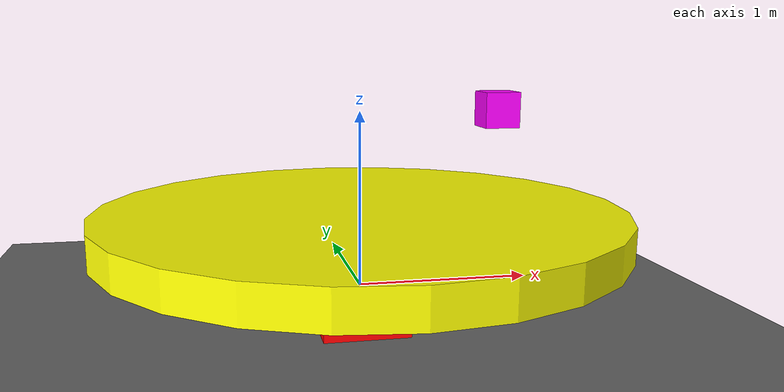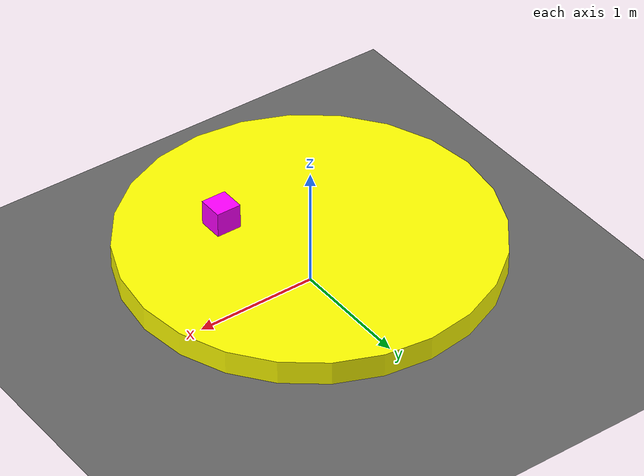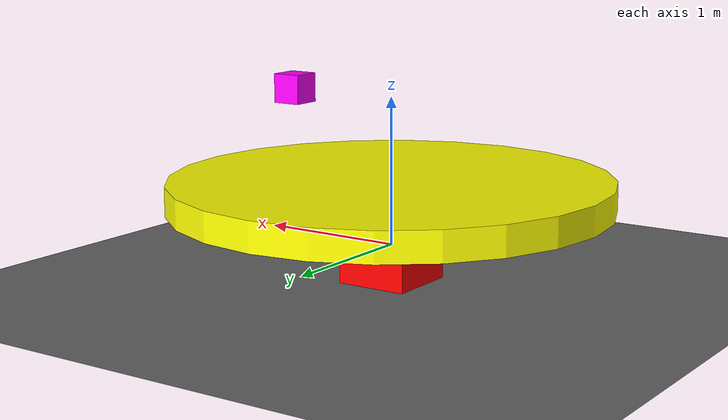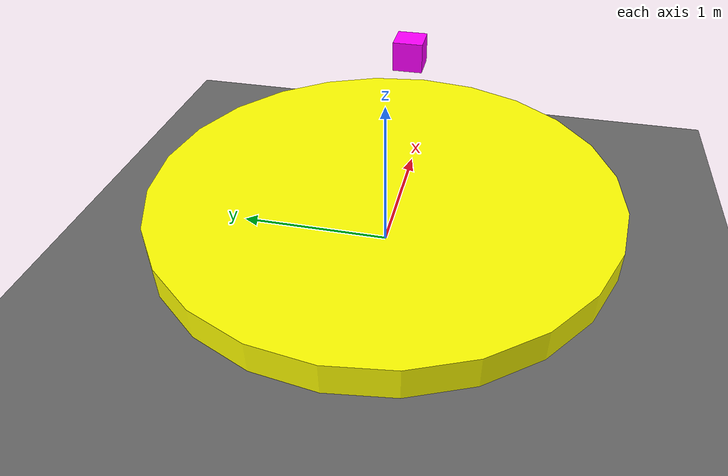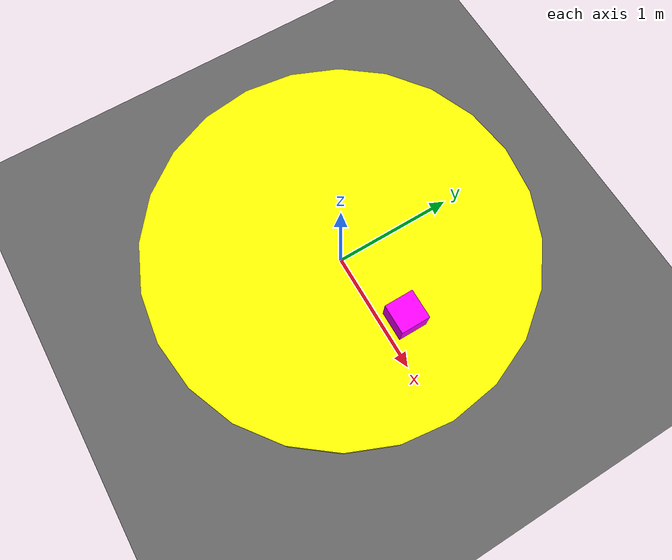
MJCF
<mujoco>
  <include file="./common/materials.xml"/>
  <option timestep="0.01"/>
  <statistic center="0 0 0" extent="1.5"/>

  <worldbody>
    <light name="light" pos="0 0 3" directional = "true"/>
    <camera name="fixed" pos="0 -3 3" xyaxes="1 0 0 0 1 1"/>
    <geom name="floor" type="plane" size="5 5 0.1" pos="0 0 -0.245" rgba="0.4 0.4 0.4 1" material="motphys-ground"/>

    <body>
      <freejoint/>
      <geom name="freebox" type="box" size="0.1 0.1 0.1" pos="0.8 0 1" rgba="1 0 1 1"/>
    </body>

    <body name="car" pos = "0 0 0">
      <joint name="slider" type="slide" axis="1 0 0" limited="true" range = "-2 2"/>
      <geom name = "box" type="box" size="0.25 0.25 0.25" pos = "0 0 0 " rgba="1 0 0 1"/>
      <site name="car_imu" type="sphere" size="0.03" rgba="0 1 0 1" pos="0 0 0"/>

      <body name="bar" pos = "0 0 0.35">
          <joint name="hinge" type="hinge" limited="false" axis = "0 0 1"/>
          <geom name="bar" type="cylinder" size="1.5 0.1" pos = "0 0 0 " rgba="1 1 0 1"/>
          <site name="imu_0" type="sphere" size="0.03" rgba="0 1 0 1" pos="0 0 0"/>
          <site name="imu_1" type="sphere" size="0.03" rgba="0 1 0 1" pos="0 0.5 0"/>
          <site name="imu_2" type="sphere" size="0.03" rgba="0 1 0 1" pos="0 1.0 0"/>
      </body>
    </body>
  </worldbody>

  <actuator>
    <motor name="actuator_slider" joint="slider" gear="500"/>
    <motor name="actuator_hinge" joint="hinge" gear="500"/>
  </actuator>

  <sensor>
    <accelerometer name="acc_0" site="imu_0"/>
    <accelerometer name="acc_1" site="imu_1"/>
    <accelerometer name="acc_2" site="imu_2"/>
    <velocimeter name="vel_0" site="imu_0"/>
    <velocimeter name="vel_1" site="imu_1"/>
    <velocimeter name="vel_2" site="imu_2"/>
    <gyro name="gyro_0" site="imu_0"/>
    <gyro name="gyro_1" site="imu_1"/>
    <gyro name="gyro_2" site="imu_2"/>

    <accelerometer name="acc_3" site="car_imu"/>
    <velocimeter name="vel_3" site="car_imu"/>
    <gyro name="gyro_3" site="car_imu"/>

    <contact name="box_floor_contact" geom1="bar" geom2="freebox"
             data="found force pos normal tangent" num="4" reduce="none"/>
  </sensor>
</mujoco>

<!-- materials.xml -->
<!--
Common textures, colors and materials to be used throughout this suite. Some
materials such as xxx_highlight are activated on occurence of certain events,
for example receiving a positive reward.
-->
<mujoco>
  <asset>
    <texture name="motphys-ground" type="2d" file="motphys-ground.png" />
    <material name="motphys-ground" texture="motphys-ground" texuniform="true"
      texrepeat="0.4 0.4" />
  </asset>
</mujoco>
